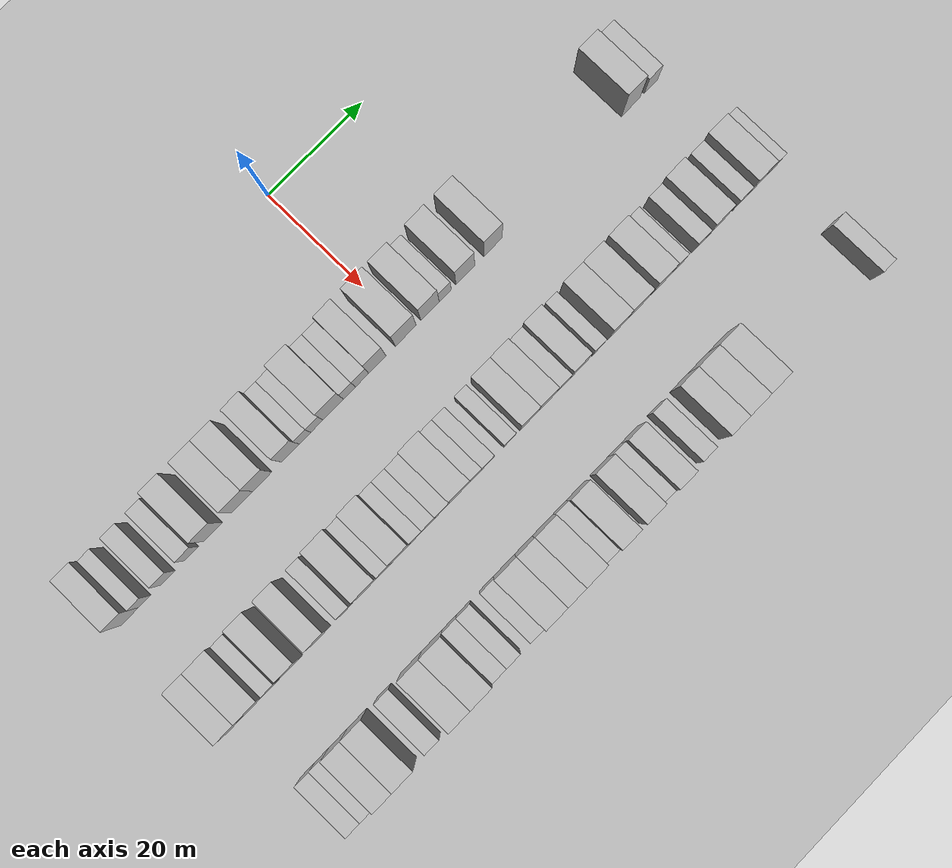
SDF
<sdf version="1.6">
 <world name="default">
  <include><name>ground_plane_1</name><uri>model://HANNAS_ground_plane</uri></include>
  <include>
   <name>ground_plane_2</name>
   <uri>model://HANNAS_ground_plane</uri>
   <pose>100 0 0  0 0 0</pose>
  </include>
  <model name="building_52">
   <static>1</static>
   <pose>25.0000 -58.2740 0 0.000000 0.000000 0.000000</pose>
   <link name="link">
    <pose>0 0 4.50 0 0 0</pose>
    <collision name="collision"><geometry><box><size>10.0000 3.6273 9.0000</size></box></geometry></collision>
    <visual name="visual">
     <cast_shadows>0</cast_shadows>
     <geometry><box><size>10.0000 3.6273 9.0000</size></box></geometry>
     <material>
      <script>
       <uri>model://HANNAS_wall/materials/scripts</uri>
       <uri>model://HANNAS_wall/materials/textures</uri>
       <name>vrc/HANNAS_wall</name>
      </script>
     </material>
    </visual>
   </link>
  </model>
  <model name="building_53">
   <static>1</static>
   <pose>25.0000 -55.2396 0 0.000000 0.000000 0.000000</pose>
   <link name="link">
    <pose>0 0 3.00 0 0 0</pose>
    <collision name="collision"><geometry><box><size>10.0000 2.4416 6.0000</size></box></geometry></collision>
    <visual name="visual">
     <cast_shadows>0</cast_shadows>
     <geometry><box><size>10.0000 2.4416 6.0000</size></box></geometry>
     <material>
      <script>
       <uri>model://HANNAS_wall/materials/scripts</uri>
       <uri>model://HANNAS_wall/materials/textures</uri>
       <name>vrc/HANNAS_wall</name>
      </script>
     </material>
    </visual>
   </link>
  </model>
  <model name="building_54">
   <static>1</static>
   <pose>25.0000 -50.5284 0 0.000000 0.000000 0.000000</pose>
   <link name="link">
    <pose>0 0 3.00 0 0 0</pose>
    <collision name="collision"><geometry><box><size>10.0000 2.9808 6.0000</size></box></geometry></collision>
    <visual name="visual">
     <cast_shadows>0</cast_shadows>
     <geometry><box><size>10.0000 2.9808 6.0000</size></box></geometry>
     <material>
      <script>
       <uri>model://HANNAS_wall/materials/scripts</uri>
       <uri>model://HANNAS_wall/materials/textures</uri>
       <name>vrc/HANNAS_wall</name>
      </script>
     </material>
    </visual>
   </link>
  </model>
  <model name="building_55">
   <static>1</static>
   <pose>25.0000 -45.5957 0 0.000000 0.000000 0.000000</pose>
   <link name="link">
    <pose>0 0 3.00 0 0 0</pose>
    <collision name="collision"><geometry><box><size>10.0000 2.8845 6.0000</size></box></geometry></collision>
    <visual name="visual">
     <cast_shadows>0</cast_shadows>
     <geometry><box><size>10.0000 2.8845 6.0000</size></box></geometry>
     <material>
      <script>
       <uri>model://HANNAS_wall/materials/scripts</uri>
       <uri>model://HANNAS_wall/materials/textures</uri>
       <name>vrc/HANNAS_wall</name>
      </script>
     </material>
    </visual>
   </link>
  </model>
  <model name="building_56">
   <static>1</static>
   <pose>25.0000 -41.2170 0 0.000000 0.000000 0.000000</pose>
   <link name="link">
    <pose>0 0 4.50 0 0 0</pose>
    <collision name="collision"><geometry><box><size>10.0000 3.8729 9.0000</size></box></geometry></collision>
    <visual name="visual">
     <cast_shadows>0</cast_shadows>
     <geometry><box><size>10.0000 3.8729 9.0000</size></box></geometry>
     <material>
      <script>
       <uri>model://HANNAS_wall/materials/scripts</uri>
       <uri>model://HANNAS_wall/materials/textures</uri>
       <name>vrc/HANNAS_wall</name>
      </script>
     </material>
    </visual>
   </link>
  </model>
  <model name="building_57">
   <static>1</static>
   <pose>25.0000 -35.1244 0 0.000000 0.000000 0.000000</pose>
   <link name="link">
    <pose>0 0 4.50 0 0 0</pose>
    <collision name="collision"><geometry><box><size>10.0000 4.3123 9.0000</size></box></geometry></collision>
    <visual name="visual">
     <cast_shadows>0</cast_shadows>
     <geometry><box><size>10.0000 4.3123 9.0000</size></box></geometry>
     <material>
      <script>
       <uri>model://HANNAS_wall/materials/scripts</uri>
       <uri>model://HANNAS_wall/materials/textures</uri>
       <name>vrc/HANNAS_wall</name>
      </script>
     </material>
    </visual>
   </link>
  </model>
  <model name="building_58">
   <static>1</static>
   <pose>25.0000 -30.9796 0 0.000000 0.000000 0.000000</pose>
   <link name="link">
    <pose>0 0 4.50 0 0 0</pose>
    <collision name="collision"><geometry><box><size>10.0000 3.9772 9.0000</size></box></geometry></collision>
    <visual name="visual">
     <cast_shadows>0</cast_shadows>
     <geometry><box><size>10.0000 3.9772 9.0000</size></box></geometry>
     <material>
      <script>
       <uri>model://HANNAS_wall/materials/scripts</uri>
       <uri>model://HANNAS_wall/materials/textures</uri>
       <name>vrc/HANNAS_wall</name>
      </script>
     </material>
    </visual>
   </link>
  </model>
  <model name="building_59">
   <static>1</static>
   <pose>25.0000 -25.1444 0 0.000000 0.000000 0.000000</pose>
   <link name="link">
    <pose>0 0 4.50 0 0 0</pose>
    <collision name="collision"><geometry><box><size>10.0000 3.6933 9.0000</size></box></geometry></collision>
    <visual name="visual">
     <cast_shadows>0</cast_shadows>
     <geometry><box><size>10.0000 3.6933 9.0000</size></box></geometry>
     <material>
      <script>
       <uri>model://HANNAS_wall/materials/scripts</uri>
       <uri>model://HANNAS_wall/materials/textures</uri>
       <name>vrc/HANNAS_wall</name>
      </script>
     </material>
    </visual>
   </link>
  </model>
  <model name="building_60">
   <static>1</static>
   <pose>25.0000 -22.0901 0 0.000000 0.000000 0.000000</pose>
   <link name="link">
    <pose>0 0 3.00 0 0 0</pose>
    <collision name="collision"><geometry><box><size>10.0000 2.4154 6.0000</size></box></geometry></collision>
    <visual name="visual">
     <cast_shadows>0</cast_shadows>
     <geometry><box><size>10.0000 2.4154 6.0000</size></box></geometry>
     <material>
      <script>
       <uri>model://HANNAS_wall/materials/scripts</uri>
       <uri>model://HANNAS_wall/materials/textures</uri>
       <name>vrc/HANNAS_wall</name>
      </script>
     </material>
    </visual>
   </link>
  </model>
  <model name="building_61">
   <static>1</static>
   <pose>25.0000 -19.5901 0 0.000000 0.000000 0.000000</pose>
   <link name="link">
    <pose>0 0 3.00 0 0 0</pose>
    <collision name="collision"><geometry><box><size>10.0000 2.5846 6.0000</size></box></geometry></collision>
    <visual name="visual">
     <cast_shadows>0</cast_shadows>
     <geometry><box><size>10.0000 2.5846 6.0000</size></box></geometry>
     <material>
      <script>
       <uri>model://HANNAS_wall/materials/scripts</uri>
       <uri>model://HANNAS_wall/materials/textures</uri>
       <name>vrc/HANNAS_wall</name>
      </script>
     </material>
    </visual>
   </link>
  </model>
  <model name="building_62">
   <static>1</static>
   <pose>25.0000 -16.1633 0 0.000000 0.000000 0.000000</pose>
   <link name="link">
    <pose>0 0 4.50 0 0 0</pose>
    <collision name="collision"><geometry><box><size>10.0000 4.2689 9.0000</size></box></geometry></collision>
    <visual name="visual">
     <cast_shadows>0</cast_shadows>
     <geometry><box><size>10.0000 4.2689 9.0000</size></box></geometry>
     <material>
      <script>
       <uri>model://HANNAS_wall/materials/scripts</uri>
       <uri>model://HANNAS_wall/materials/textures</uri>
       <name>vrc/HANNAS_wall</name>
      </script>
     </material>
    </visual>
   </link>
  </model>
  <model name="building_63">
   <static>1</static>
   <pose>25.0000 -12.7750 0 0.000000 0.000000 0.000000</pose>
   <link name="link">
    <pose>0 0 3.00 0 0 0</pose>
    <collision name="collision"><geometry><box><size>10.0000 2.5077 6.0000</size></box></geometry></collision>
    <visual name="visual">
     <cast_shadows>0</cast_shadows>
     <geometry><box><size>10.0000 2.5077 6.0000</size></box></geometry>
     <material>
      <script>
       <uri>model://HANNAS_wall/materials/scripts</uri>
       <uri>model://HANNAS_wall/materials/textures</uri>
       <name>vrc/HANNAS_wall</name>
      </script>
     </material>
    </visual>
   </link>
  </model>
  <model name="building_64">
   <static>1</static>
   <pose>25.0000 -10.1122 0 0.000000 0.000000 0.000000</pose>
   <link name="link">
    <pose>0 0 3.00 0 0 0</pose>
    <collision name="collision"><geometry><box><size>10.0000 2.8179 6.0000</size></box></geometry></collision>
    <visual name="visual">
     <cast_shadows>0</cast_shadows>
     <geometry><box><size>10.0000 2.8179 6.0000</size></box></geometry>
     <material>
      <script>
       <uri>model://HANNAS_wall/materials/scripts</uri>
       <uri>model://HANNAS_wall/materials/textures</uri>
       <name>vrc/HANNAS_wall</name>
      </script>
     </material>
    </visual>
   </link>
  </model>
  <model name="building_65">
   <static>1</static>
   <pose>25.0000 -6.8777 0 0.000000 0.000000 0.000000</pose>
   <link name="link">
    <pose>0 0 4.50 0 0 0</pose>
    <collision name="collision"><geometry><box><size>10.0000 3.6511 9.0000</size></box></geometry></collision>
    <visual name="visual">
     <cast_shadows>0</cast_shadows>
     <geometry><box><size>10.0000 3.6511 9.0000</size></box></geometry>
     <material>
      <script>
       <uri>model://HANNAS_wall/materials/scripts</uri>
       <uri>model://HANNAS_wall/materials/textures</uri>
       <name>vrc/HANNAS_wall</name>
      </script>
     </material>
    </visual>
   </link>
  </model>
  <model name="building_66">
   <static>1</static>
   <pose>25.0000 -0.8495 0 0.000000 0.000000 0.000000</pose>
   <link name="link">
    <pose>0 0 4.50 0 0 0</pose>
    <collision name="collision"><geometry><box><size>10.0000 4.4052 9.0000</size></box></geometry></collision>
    <visual name="visual">
     <cast_shadows>0</cast_shadows>
     <geometry><box><size>10.0000 4.4052 9.0000</size></box></geometry>
     <material>
      <script>
       <uri>model://HANNAS_wall/materials/scripts</uri>
       <uri>model://HANNAS_wall/materials/textures</uri>
       <name>vrc/HANNAS_wall</name>
      </script>
     </material>
    </visual>
   </link>
  </model>
  <model name="building_67">
   <static>1</static>
   <pose>25.0000 4.3124 0 0.000000 0.000000 0.000000</pose>
   <link name="link">
    <pose>0 0 4.50 0 0 0</pose>
    <collision name="collision"><geometry><box><size>10.0000 3.9185 9.0000</size></box></geometry></collision>
    <visual name="visual">
     <cast_shadows>0</cast_shadows>
     <geometry><box><size>10.0000 3.9185 9.0000</size></box></geometry>
     <material>
      <script>
       <uri>model://HANNAS_wall/materials/scripts</uri>
       <uri>model://HANNAS_wall/materials/textures</uri>
       <name>vrc/HANNAS_wall</name>
      </script>
     </material>
    </visual>
   </link>
  </model>
  <model name="building_68">
   <static>1</static>
   <pose>25.0000 7.5532 0 0.000000 0.000000 0.000000</pose>
   <link name="link">
    <pose>0 0 3.00 0 0 0</pose>
    <collision name="collision"><geometry><box><size>10.0000 2.5631 6.0000</size></box></geometry></collision>
    <visual name="visual">
     <cast_shadows>0</cast_shadows>
     <geometry><box><size>10.0000 2.5631 6.0000</size></box></geometry>
     <material>
      <script>
       <uri>model://HANNAS_wall/materials/scripts</uri>
       <uri>model://HANNAS_wall/materials/textures</uri>
       <name>vrc/HANNAS_wall</name>
      </script>
     </material>
    </visual>
   </link>
  </model>
  <model name="building_69">
   <static>1</static>
   <pose>25.0000 11.8336 0 0.000000 0.000000 0.000000</pose>
   <link name="link">
    <pose>0 0 4.50 0 0 0</pose>
    <collision name="collision"><geometry><box><size>10.0000 3.9978 9.0000</size></box></geometry></collision>
    <visual name="visual">
     <cast_shadows>0</cast_shadows>
     <geometry><box><size>10.0000 3.9978 9.0000</size></box></geometry>
     <material>
      <script>
       <uri>model://HANNAS_wall/materials/scripts</uri>
       <uri>model://HANNAS_wall/materials/textures</uri>
       <name>vrc/HANNAS_wall</name>
      </script>
     </material>
    </visual>
   </link>
  </model>
  <model name="building_70">
   <static>1</static>
   <pose>25.0000 17.7720 0 0.000000 0.000000 0.000000</pose>
   <link name="link">
    <pose>0 0 4.50 0 0 0</pose>
    <collision name="collision"><geometry><box><size>10.0000 3.8788 9.0000</size></box></geometry></collision>
    <visual name="visual">
     <cast_shadows>0</cast_shadows>
     <geometry><box><size>10.0000 3.8788 9.0000</size></box></geometry>
     <material>
      <script>
       <uri>model://HANNAS_wall/materials/scripts</uri>
       <uri>model://HANNAS_wall/materials/textures</uri>
       <name>vrc/HANNAS_wall</name>
      </script>
     </material>
    </visual>
   </link>
  </model>
  <model name="building_71">
   <static>1</static>
   <pose>25.0000 47.7534 0 0.000000 0.000000 0.000000</pose>
   <link name="link">
    <pose>0 0 4.50 0 0 0</pose>
    <collision name="collision"><geometry><box><size>10.0000 4.0280 9.0000</size></box></geometry></collision>
    <visual name="visual">
     <cast_shadows>0</cast_shadows>
     <geometry><box><size>10.0000 4.0280 9.0000</size></box></geometry>
     <material>
      <script>
       <uri>model://HANNAS_wall/materials/scripts</uri>
       <uri>model://HANNAS_wall/materials/textures</uri>
       <name>vrc/HANNAS_wall</name>
      </script>
     </material>
    </visual>
   </link>
  </model>
  <model name="building_72">
   <static>1</static>
   <pose>25.0000 52.2145 0 0.000000 0.000000 0.000000</pose>
   <link name="link">
    <pose>0 0 3.00 0 0 0</pose>
    <collision name="collision"><geometry><box><size>10.0000 2.8943 6.0000</size></box></geometry></collision>
    <visual name="visual">
     <cast_shadows>0</cast_shadows>
     <geometry><box><size>10.0000 2.8943 6.0000</size></box></geometry>
     <material>
      <script>
       <uri>model://HANNAS_wall/materials/scripts</uri>
       <uri>model://HANNAS_wall/materials/textures</uri>
       <name>vrc/HANNAS_wall</name>
      </script>
     </material>
    </visual>
   </link>
  </model>
  <model name="building_169">
   <static>1</static>
   <pose>47.0000 -58.1785 0 0.000000 0.000000 0.000000</pose>
   <link name="link">
    <pose>0 0 4.50 0 0 0</pose>
    <collision name="collision"><geometry><box><size>10.0000 3.8256 9.0000</size></box></geometry></collision>
    <visual name="visual">
     <cast_shadows>0</cast_shadows>
     <geometry><box><size>10.0000 3.8256 9.0000</size></box></geometry>
     <material>
      <script>
       <uri>model://HANNAS_wall/materials/scripts</uri>
       <uri>model://HANNAS_wall/materials/textures</uri>
       <name>vrc/HANNAS_wall</name>
      </script>
     </material>
    </visual>
   </link>
  </model>
  <model name="building_170">
   <static>1</static>
   <pose>47.0000 -54.0431 0 0.000000 0.000000 0.000000</pose>
   <link name="link">
    <pose>0 0 4.50 0 0 0</pose>
    <collision name="collision"><geometry><box><size>10.0000 4.4451 9.0000</size></box></geometry></collision>
    <visual name="visual">
     <cast_shadows>0</cast_shadows>
     <geometry><box><size>10.0000 4.4451 9.0000</size></box></geometry>
     <material>
      <script>
       <uri>model://HANNAS_wall/materials/scripts</uri>
       <uri>model://HANNAS_wall/materials/textures</uri>
       <name>vrc/HANNAS_wall</name>
      </script>
     </material>
    </visual>
   </link>
  </model>
  <model name="building_171">
   <static>1</static>
   <pose>47.0000 -50.5903 0 0.000000 0.000000 0.000000</pose>
   <link name="link">
    <pose>0 0 3.00 0 0 0</pose>
    <collision name="collision"><geometry><box><size>10.0000 2.4605 6.0000</size></box></geometry></collision>
    <visual name="visual">
     <cast_shadows>0</cast_shadows>
     <geometry><box><size>10.0000 2.4605 6.0000</size></box></geometry>
     <material>
      <script>
       <uri>model://HANNAS_wall/materials/scripts</uri>
       <uri>model://HANNAS_wall/materials/textures</uri>
       <name>vrc/HANNAS_wall</name>
      </script>
     </material>
    </visual>
   </link>
  </model>
  <model name="building_172">
   <static>1</static>
   <pose>47.0000 -46.5137 0 0.000000 0.000000 0.000000</pose>
   <link name="link">
    <pose>0 0 4.50 0 0 0</pose>
    <collision name="collision"><geometry><box><size>10.0000 3.6927 9.0000</size></box></geometry></collision>
    <visual name="visual">
     <cast_shadows>0</cast_shadows>
     <geometry><box><size>10.0000 3.6927 9.0000</size></box></geometry>
     <material>
      <script>
       <uri>model://HANNAS_wall/materials/scripts</uri>
       <uri>model://HANNAS_wall/materials/textures</uri>
       <name>vrc/HANNAS_wall</name>
      </script>
     </material>
    </visual>
   </link>
  </model>
  <model name="building_173">
   <static>1</static>
   <pose>47.0000 -40.7774 0 0.000000 0.000000 0.000000</pose>
   <link name="link">
    <pose>0 0 4.50 0 0 0</pose>
    <collision name="collision"><geometry><box><size>10.0000 3.7800 9.0000</size></box></geometry></collision>
    <visual name="visual">
     <cast_shadows>0</cast_shadows>
     <geometry><box><size>10.0000 3.7800 9.0000</size></box></geometry>
     <material>
      <script>
       <uri>model://HANNAS_wall/materials/scripts</uri>
       <uri>model://HANNAS_wall/materials/textures</uri>
       <name>vrc/HANNAS_wall</name>
      </script>
     </material>
    </visual>
   </link>
  </model>
  <model name="building_174">
   <static>1</static>
   <pose>47.0000 -35.6167 0 0.000000 0.000000 0.000000</pose>
   <link name="link">
    <pose>0 0 3.00 0 0 0</pose>
    <collision name="collision"><geometry><box><size>10.0000 2.5415 6.0000</size></box></geometry></collision>
    <visual name="visual">
     <cast_shadows>0</cast_shadows>
     <geometry><box><size>10.0000 2.5415 6.0000</size></box></geometry>
     <material>
      <script>
       <uri>model://HANNAS_wall/materials/scripts</uri>
       <uri>model://HANNAS_wall/materials/textures</uri>
       <name>vrc/HANNAS_wall</name>
      </script>
     </material>
    </visual>
   </link>
  </model>
  <model name="building_175">
   <static>1</static>
   <pose>47.0000 -31.0996 0 0.000000 0.000000 0.000000</pose>
   <link name="link">
    <pose>0 0 4.50 0 0 0</pose>
    <collision name="collision"><geometry><box><size>10.0000 4.4926 9.0000</size></box></geometry></collision>
    <visual name="visual">
     <cast_shadows>0</cast_shadows>
     <geometry><box><size>10.0000 4.4926 9.0000</size></box></geometry>
     <material>
      <script>
       <uri>model://HANNAS_wall/materials/scripts</uri>
       <uri>model://HANNAS_wall/materials/textures</uri>
       <name>vrc/HANNAS_wall</name>
      </script>
     </material>
    </visual>
   </link>
  </model>
  <model name="building_176">
   <static>1</static>
   <pose>47.0000 -27.5142 0 0.000000 0.000000 0.000000</pose>
   <link name="link">
    <pose>0 0 3.00 0 0 0</pose>
    <collision name="collision"><geometry><box><size>10.0000 2.6783 6.0000</size></box></geometry></collision>
    <visual name="visual">
     <cast_shadows>0</cast_shadows>
     <geometry><box><size>10.0000 2.6783 6.0000</size></box></geometry>
     <material>
      <script>
       <uri>model://HANNAS_wall/materials/scripts</uri>
       <uri>model://HANNAS_wall/materials/textures</uri>
       <name>vrc/HANNAS_wall</name>
      </script>
     </material>
    </visual>
   </link>
  </model>
  <model name="building_177">
   <static>1</static>
   <pose>47.0000 -24.1858 0 0.000000 0.000000 0.000000</pose>
   <link name="link">
    <pose>0 0 4.50 0 0 0</pose>
    <collision name="collision"><geometry><box><size>10.0000 3.9785 9.0000</size></box></geometry></collision>
    <visual name="visual">
     <cast_shadows>0</cast_shadows>
     <geometry><box><size>10.0000 3.9785 9.0000</size></box></geometry>
     <material>
      <script>
       <uri>model://HANNAS_wall/materials/scripts</uri>
       <uri>model://HANNAS_wall/materials/textures</uri>
       <name>vrc/HANNAS_wall</name>
      </script>
     </material>
    </visual>
   </link>
  </model>
  <model name="building_178">
   <static>1</static>
   <pose>47.0000 -20.9235 0 0.000000 0.000000 0.000000</pose>
   <link name="link">
    <pose>0 0 3.00 0 0 0</pose>
    <collision name="collision"><geometry><box><size>10.0000 2.5461 6.0000</size></box></geometry></collision>
    <visual name="visual">
     <cast_shadows>0</cast_shadows>
     <geometry><box><size>10.0000 2.5461 6.0000</size></box></geometry>
     <material>
      <script>
       <uri>model://HANNAS_wall/materials/scripts</uri>
       <uri>model://HANNAS_wall/materials/textures</uri>
       <name>vrc/HANNAS_wall</name>
      </script>
     </material>
    </visual>
   </link>
  </model>
  <model name="building_179">
   <static>1</static>
   <pose>47.0000 -18.3154 0 0.000000 0.000000 0.000000</pose>
   <link name="link">
    <pose>0 0 3.00 0 0 0</pose>
    <collision name="collision"><geometry><box><size>10.0000 2.6702 6.0000</size></box></geometry></collision>
    <visual name="visual">
     <cast_shadows>0</cast_shadows>
     <geometry><box><size>10.0000 2.6702 6.0000</size></box></geometry>
     <material>
      <script>
       <uri>model://HANNAS_wall/materials/scripts</uri>
       <uri>model://HANNAS_wall/materials/textures</uri>
       <name>vrc/HANNAS_wall</name>
      </script>
     </material>
    </visual>
   </link>
  </model>
  <model name="building_180">
   <static>1</static>
   <pose>47.0000 -15.4980 0 0.000000 0.000000 0.000000</pose>
   <link name="link">
    <pose>0 0 3.00 0 0 0</pose>
    <collision name="collision"><geometry><box><size>10.0000 2.9646 6.0000</size></box></geometry></collision>
    <visual name="visual">
     <cast_shadows>0</cast_shadows>
     <geometry><box><size>10.0000 2.9646 6.0000</size></box></geometry>
     <material>
      <script>
       <uri>model://HANNAS_wall/materials/scripts</uri>
       <uri>model://HANNAS_wall/materials/textures</uri>
       <name>vrc/HANNAS_wall</name>
      </script>
     </material>
    </visual>
   </link>
  </model>
  <model name="building_181">
   <static>1</static>
   <pose>47.0000 -11.8893 0 0.000000 0.000000 0.000000</pose>
   <link name="link">
    <pose>0 0 4.50 0 0 0</pose>
    <collision name="collision"><geometry><box><size>10.0000 4.2527 9.0000</size></box></geometry></collision>
    <visual name="visual">
     <cast_shadows>0</cast_shadows>
     <geometry><box><size>10.0000 4.2527 9.0000</size></box></geometry>
     <material>
      <script>
       <uri>model://HANNAS_wall/materials/scripts</uri>
       <uri>model://HANNAS_wall/materials/textures</uri>
       <name>vrc/HANNAS_wall</name>
      </script>
     </material>
    </visual>
   </link>
  </model>
  <model name="building_182">
   <static>1</static>
   <pose>47.0000 -8.5340 0 0.000000 0.000000 0.000000</pose>
   <link name="link">
    <pose>0 0 3.00 0 0 0</pose>
    <collision name="collision"><geometry><box><size>10.0000 2.4579 6.0000</size></box></geometry></collision>
    <visual name="visual">
     <cast_shadows>0</cast_shadows>
     <geometry><box><size>10.0000 2.4579 6.0000</size></box></geometry>
     <material>
      <script>
       <uri>model://HANNAS_wall/materials/scripts</uri>
       <uri>model://HANNAS_wall/materials/textures</uri>
       <name>vrc/HANNAS_wall</name>
      </script>
     </material>
    </visual>
   </link>
  </model>
  <model name="building_183">
   <static>1</static>
   <pose>47.0000 -6.0006 0 0.000000 0.000000 0.000000</pose>
   <link name="link">
    <pose>0 0 3.00 0 0 0</pose>
    <collision name="collision"><geometry><box><size>10.0000 2.6089 6.0000</size></box></geometry></collision>
    <visual name="visual">
     <cast_shadows>0</cast_shadows>
     <geometry><box><size>10.0000 2.6089 6.0000</size></box></geometry>
     <material>
      <script>
       <uri>model://HANNAS_wall/materials/scripts</uri>
       <uri>model://HANNAS_wall/materials/textures</uri>
       <name>vrc/HANNAS_wall</name>
      </script>
     </material>
    </visual>
   </link>
  </model>
  <model name="building_184">
   <static>1</static>
   <pose>47.0000 -1.4585 0 0.000000 0.000000 0.000000</pose>
   <link name="link">
    <pose>0 0 3.00 0 0 0</pose>
    <collision name="collision"><geometry><box><size>10.0000 2.4753 6.0000</size></box></geometry></collision>
    <visual name="visual">
     <cast_shadows>0</cast_shadows>
     <geometry><box><size>10.0000 2.4753 6.0000</size></box></geometry>
     <material>
      <script>
       <uri>model://HANNAS_wall/materials/scripts</uri>
       <uri>model://HANNAS_wall/materials/textures</uri>
       <name>vrc/HANNAS_wall</name>
      </script>
     </material>
    </visual>
   </link>
  </model>
  <model name="building_185">
   <static>1</static>
   <pose>47.0000 2.7223 0 0.000000 0.000000 0.000000</pose>
   <link name="link">
    <pose>0 0 4.50 0 0 0</pose>
    <collision name="collision"><geometry><box><size>10.0000 3.8863 9.0000</size></box></geometry></collision>
    <visual name="visual">
     <cast_shadows>0</cast_shadows>
     <geometry><box><size>10.0000 3.8863 9.0000</size></box></geometry>
     <material>
      <script>
       <uri>model://HANNAS_wall/materials/scripts</uri>
       <uri>model://HANNAS_wall/materials/textures</uri>
       <name>vrc/HANNAS_wall</name>
      </script>
     </material>
    </visual>
   </link>
  </model>
  <model name="building_186">
   <static>1</static>
   <pose>47.0000 6.5439 0 0.000000 0.000000 0.000000</pose>
   <link name="link">
    <pose>0 0 4.50 0 0 0</pose>
    <collision name="collision"><geometry><box><size>10.0000 3.7568 9.0000</size></box></geometry></collision>
    <visual name="visual">
     <cast_shadows>0</cast_shadows>
     <geometry><box><size>10.0000 3.7568 9.0000</size></box></geometry>
     <material>
      <script>
       <uri>model://HANNAS_wall/materials/scripts</uri>
       <uri>model://HANNAS_wall/materials/textures</uri>
       <name>vrc/HANNAS_wall</name>
      </script>
     </material>
    </visual>
   </link>
  </model>
  <model name="building_187">
   <static>1</static>
   <pose>47.0000 9.9196 0 0.000000 0.000000 0.000000</pose>
   <link name="link">
    <pose>0 0 3.00 0 0 0</pose>
    <collision name="collision"><geometry><box><size>10.0000 2.9945 6.0000</size></box></geometry></collision>
    <visual name="visual">
     <cast_shadows>0</cast_shadows>
     <geometry><box><size>10.0000 2.9945 6.0000</size></box></geometry>
     <material>
      <script>
       <uri>model://HANNAS_wall/materials/scripts</uri>
       <uri>model://HANNAS_wall/materials/textures</uri>
       <name>vrc/HANNAS_wall</name>
      </script>
     </material>
    </visual>
   </link>
  </model>
  <model name="building_188">
   <static>1</static>
   <pose>47.0000 13.2847 0 0.000000 0.000000 0.000000</pose>
   <link name="link">
    <pose>0 0 4.50 0 0 0</pose>
    <collision name="collision"><geometry><box><size>10.0000 3.7358 9.0000</size></box></geometry></collision>
    <visual name="visual">
     <cast_shadows>0</cast_shadows>
     <geometry><box><size>10.0000 3.7358 9.0000</size></box></geometry>
     <material>
      <script>
       <uri>model://HANNAS_wall/materials/scripts</uri>
       <uri>model://HANNAS_wall/materials/textures</uri>
       <name>vrc/HANNAS_wall</name>
      </script>
     </material>
    </visual>
   </link>
  </model>
  <model name="building_189">
   <static>1</static>
   <pose>47.0000 17.3643 0 0.000000 0.000000 0.000000</pose>
   <link name="link">
    <pose>0 0 3.00 0 0 0</pose>
    <collision name="collision"><geometry><box><size>10.0000 2.4234 6.0000</size></box></geometry></collision>
    <visual name="visual">
     <cast_shadows>0</cast_shadows>
     <geometry><box><size>10.0000 2.4234 6.0000</size></box></geometry>
     <material>
      <script>
       <uri>model://HANNAS_wall/materials/scripts</uri>
       <uri>model://HANNAS_wall/materials/textures</uri>
       <name>vrc/HANNAS_wall</name>
      </script>
     </material>
    </visual>
   </link>
  </model>
  <model name="building_190">
   <static>1</static>
   <pose>47.0000 21.6171 0 0.000000 0.000000 0.000000</pose>
   <link name="link">
    <pose>0 0 4.50 0 0 0</pose>
    <collision name="collision"><geometry><box><size>10.0000 4.0823 9.0000</size></box></geometry></collision>
    <visual name="visual">
     <cast_shadows>0</cast_shadows>
     <geometry><box><size>10.0000 4.0823 9.0000</size></box></geometry>
     <material>
      <script>
       <uri>model://HANNAS_wall/materials/scripts</uri>
       <uri>model://HANNAS_wall/materials/textures</uri>
       <name>vrc/HANNAS_wall</name>
      </script>
     </material>
    </visual>
   </link>
  </model>
  <model name="building_191">
   <static>1</static>
   <pose>47.0000 25.7757 0 0.000000 0.000000 0.000000</pose>
   <link name="link">
    <pose>0 0 4.50 0 0 0</pose>
    <collision name="collision"><geometry><box><size>10.0000 4.2348 9.0000</size></box></geometry></collision>
    <visual name="visual">
     <cast_shadows>0</cast_shadows>
     <geometry><box><size>10.0000 4.2348 9.0000</size></box></geometry>
     <material>
      <script>
       <uri>model://HANNAS_wall/materials/scripts</uri>
       <uri>model://HANNAS_wall/materials/textures</uri>
       <name>vrc/HANNAS_wall</name>
      </script>
     </material>
    </visual>
   </link>
  </model>
  <model name="building_192">
   <static>1</static>
   <pose>47.0000 30.9568 0 0.000000 0.000000 0.000000</pose>
   <link name="link">
    <pose>0 0 4.50 0 0 0</pose>
    <collision name="collision"><geometry><box><size>10.0000 4.1275 9.0000</size></box></geometry></collision>
    <visual name="visual">
     <cast_shadows>0</cast_shadows>
     <geometry><box><size>10.0000 4.1275 9.0000</size></box></geometry>
     <material>
      <script>
       <uri>model://HANNAS_wall/materials/scripts</uri>
       <uri>model://HANNAS_wall/materials/textures</uri>
       <name>vrc/HANNAS_wall</name>
      </script>
     </material>
    </visual>
   </link>
  </model>
  <model name="building_193">
   <static>1</static>
   <pose>47.0000 34.4570 0 0.000000 0.000000 0.000000</pose>
   <link name="link">
    <pose>0 0 3.00 0 0 0</pose>
    <collision name="collision"><geometry><box><size>10.0000 2.8727 6.0000</size></box></geometry></collision>
    <visual name="visual">
     <cast_shadows>0</cast_shadows>
     <geometry><box><size>10.0000 2.8727 6.0000</size></box></geometry>
     <material>
      <script>
       <uri>model://HANNAS_wall/materials/scripts</uri>
       <uri>model://HANNAS_wall/materials/textures</uri>
       <name>vrc/HANNAS_wall</name>
      </script>
     </material>
    </visual>
   </link>
  </model>
  <model name="building_194">
   <static>1</static>
   <pose>47.0000 39.3200 0 0.000000 0.000000 0.000000</pose>
   <link name="link">
    <pose>0 0 3.00 0 0 0</pose>
    <collision name="collision"><geometry><box><size>10.0000 2.8533 6.0000</size></box></geometry></collision>
    <visual name="visual">
     <cast_shadows>0</cast_shadows>
     <geometry><box><size>10.0000 2.8533 6.0000</size></box></geometry>
     <material>
      <script>
       <uri>model://HANNAS_wall/materials/scripts</uri>
       <uri>model://HANNAS_wall/materials/textures</uri>
       <name>vrc/HANNAS_wall</name>
      </script>
     </material>
    </visual>
   </link>
  </model>
  <model name="building_195">
   <static>1</static>
   <pose>47.0000 42.7530 0 0.000000 0.000000 0.000000</pose>
   <link name="link">
    <pose>0 0 4.50 0 0 0</pose>
    <collision name="collision"><geometry><box><size>10.0000 4.0126 9.0000</size></box></geometry></collision>
    <visual name="visual">
     <cast_shadows>0</cast_shadows>
     <geometry><box><size>10.0000 4.0126 9.0000</size></box></geometry>
     <material>
      <script>
       <uri>model://HANNAS_wall/materials/scripts</uri>
       <uri>model://HANNAS_wall/materials/textures</uri>
       <name>vrc/HANNAS_wall</name>
      </script>
     </material>
    </visual>
   </link>
  </model>
  <model name="building_196">
   <static>1</static>
   <pose>47.0000 48.1871 0 0.000000 0.000000 0.000000</pose>
   <link name="link">
    <pose>0 0 3.00 0 0 0</pose>
    <collision name="collision"><geometry><box><size>10.0000 2.8556 6.0000</size></box></geometry></collision>
    <visual name="visual">
     <cast_shadows>0</cast_shadows>
     <geometry><box><size>10.0000 2.8556 6.0000</size></box></geometry>
     <material>
      <script>
       <uri>model://HANNAS_wall/materials/scripts</uri>
       <uri>model://HANNAS_wall/materials/textures</uri>
       <name>vrc/HANNAS_wall</name>
      </script>
     </material>
    </visual>
   </link>
  </model>
  <model name="building_197">
   <static>1</static>
   <pose>47.0000 51.6441 0 0.000000 0.000000 0.000000</pose>
   <link name="link">
    <pose>0 0 4.50 0 0 0</pose>
    <collision name="collision"><geometry><box><size>10.0000 4.0585 9.0000</size></box></geometry></collision>
    <visual name="visual">
     <cast_shadows>0</cast_shadows>
     <geometry><box><size>10.0000 4.0585 9.0000</size></box></geometry>
     <material>
      <script>
       <uri>model://HANNAS_wall/materials/scripts</uri>
       <uri>model://HANNAS_wall/materials/textures</uri>
       <name>vrc/HANNAS_wall</name>
      </script>
     </material>
    </visual>
   </link>
  </model>
  <model name="building_198">
   <static>1</static>
   <pose>47.0000 55.1408 0 0.000000 0.000000 0.000000</pose>
   <link name="link">
    <pose>0 0 3.00 0 0 0</pose>
    <collision name="collision"><geometry><box><size>10.0000 2.9348 6.0000</size></box></geometry></collision>
    <visual name="visual">
     <cast_shadows>0</cast_shadows>
     <geometry><box><size>10.0000 2.9348 6.0000</size></box></geometry>
     <material>
      <script>
       <uri>model://HANNAS_wall/materials/scripts</uri>
       <uri>model://HANNAS_wall/materials/textures</uri>
       <name>vrc/HANNAS_wall</name>
      </script>
     </material>
    </visual>
   </link>
  </model>
  <model name="building_297">
   <static>1</static>
   <pose>69.0000 -55.7956 0 0.000000 0.000000 0.000000</pose>
   <link name="link">
    <pose>0 0 3.00 0 0 0</pose>
    <collision name="collision"><geometry><box><size>10.0000 2.8144 6.0000</size></box></geometry></collision>
    <visual name="visual">
     <cast_shadows>0</cast_shadows>
     <geometry><box><size>10.0000 2.8144 6.0000</size></box></geometry>
     <material>
      <script>
       <uri>model://HANNAS_wall/materials/scripts</uri>
       <uri>model://HANNAS_wall/materials/textures</uri>
       <name>vrc/HANNAS_wall</name>
      </script>
     </material>
    </visual>
   </link>
  </model>
  <model name="building_298">
   <static>1</static>
   <pose>69.0000 -52.9351 0 0.000000 0.000000 0.000000</pose>
   <link name="link">
    <pose>0 0 3.00 0 0 0</pose>
    <collision name="collision"><geometry><box><size>10.0000 2.9068 6.0000</size></box></geometry></collision>
    <visual name="visual">
     <cast_shadows>0</cast_shadows>
     <geometry><box><size>10.0000 2.9068 6.0000</size></box></geometry>
     <material>
      <script>
       <uri>model://HANNAS_wall/materials/scripts</uri>
       <uri>model://HANNAS_wall/materials/textures</uri>
       <name>vrc/HANNAS_wall</name>
      </script>
     </material>
    </visual>
   </link>
  </model>
  <model name="building_299">
   <static>1</static>
   <pose>69.0000 -49.5875 0 0.000000 0.000000 0.000000</pose>
   <link name="link">
    <pose>0 0 4.50 0 0 0</pose>
    <collision name="collision"><geometry><box><size>10.0000 3.7884 9.0000</size></box></geometry></collision>
    <visual name="visual">
     <cast_shadows>0</cast_shadows>
     <geometry><box><size>10.0000 3.7884 9.0000</size></box></geometry>
     <material>
      <script>
       <uri>model://HANNAS_wall/materials/scripts</uri>
       <uri>model://HANNAS_wall/materials/textures</uri>
       <name>vrc/HANNAS_wall</name>
      </script>
     </material>
    </visual>
   </link>
  </model>
  <model name="building_300">
   <static>1</static>
   <pose>69.0000 -45.6287 0 0.000000 0.000000 0.000000</pose>
   <link name="link">
    <pose>0 0 4.50 0 0 0</pose>
    <collision name="collision"><geometry><box><size>10.0000 4.1292 9.0000</size></box></geometry></collision>
    <visual name="visual">
     <cast_shadows>0</cast_shadows>
     <geometry><box><size>10.0000 4.1292 9.0000</size></box></geometry>
     <material>
      <script>
       <uri>model://HANNAS_wall/materials/scripts</uri>
       <uri>model://HANNAS_wall/materials/textures</uri>
       <name>vrc/HANNAS_wall</name>
      </script>
     </material>
    </visual>
   </link>
  </model>
  <model name="building_301">
   <static>1</static>
   <pose>69.0000 -40.0858 0 0.000000 0.000000 0.000000</pose>
   <link name="link">
    <pose>0 0 3.00 0 0 0</pose>
    <collision name="collision"><geometry><box><size>10.0000 2.9566 6.0000</size></box></geometry></collision>
    <visual name="visual">
     <cast_shadows>0</cast_shadows>
     <geometry><box><size>10.0000 2.9566 6.0000</size></box></geometry>
     <material>
      <script>
       <uri>model://HANNAS_wall/materials/scripts</uri>
       <uri>model://HANNAS_wall/materials/textures</uri>
       <name>vrc/HANNAS_wall</name>
      </script>
     </material>
    </visual>
   </link>
  </model>
  <model name="building_302">
   <static>1</static>
   <pose>69.0000 -34.4725 0 0.000000 0.000000 0.000000</pose>
   <link name="link">
    <pose>0 0 4.50 0 0 0</pose>
    <collision name="collision"><geometry><box><size>10.0000 4.2701 9.0000</size></box></geometry></collision>
    <visual name="visual">
     <cast_shadows>0</cast_shadows>
     <geometry><box><size>10.0000 4.2701 9.0000</size></box></geometry>
     <material>
      <script>
       <uri>model://HANNAS_wall/materials/scripts</uri>
       <uri>model://HANNAS_wall/materials/textures</uri>
       <name>vrc/HANNAS_wall</name>
      </script>
     </material>
    </visual>
   </link>
  </model>
  <model name="building_303">
   <static>1</static>
   <pose>69.0000 -30.1529 0 0.000000 0.000000 0.000000</pose>
   <link name="link">
    <pose>0 0 4.50 0 0 0</pose>
    <collision name="collision"><geometry><box><size>10.0000 4.3692 9.0000</size></box></geometry></collision>
    <visual name="visual">
     <cast_shadows>0</cast_shadows>
     <geometry><box><size>10.0000 4.3692 9.0000</size></box></geometry>
     <material>
      <script>
       <uri>model://HANNAS_wall/materials/scripts</uri>
       <uri>model://HANNAS_wall/materials/textures</uri>
       <name>vrc/HANNAS_wall</name>
      </script>
     </material>
    </visual>
   </link>
  </model>
  <model name="building_304">
   <static>1</static>
   <pose>69.0000 -26.5095 0 0.000000 0.000000 0.000000</pose>
   <link name="link">
    <pose>0 0 3.00 0 0 0</pose>
    <collision name="collision"><geometry><box><size>10.0000 2.9176 6.0000</size></box></geometry></collision>
    <visual name="visual">
     <cast_shadows>0</cast_shadows>
     <geometry><box><size>10.0000 2.9176 6.0000</size></box></geometry>
     <material>
      <script>
       <uri>model://HANNAS_wall/materials/scripts</uri>
       <uri>model://HANNAS_wall/materials/textures</uri>
       <name>vrc/HANNAS_wall</name>
      </script>
     </material>
    </visual>
   </link>
  </model>
  <model name="building_305">
   <static>1</static>
   <pose>69.0000 -23.6128 0 0.000000 0.000000 0.000000</pose>
   <link name="link">
    <pose>0 0 3.00 0 0 0</pose>
    <collision name="collision"><geometry><box><size>10.0000 2.8757 6.0000</size></box></geometry></collision>
    <visual name="visual">
     <cast_shadows>0</cast_shadows>
     <geometry><box><size>10.0000 2.8757 6.0000</size></box></geometry>
     <material>
      <script>
       <uri>model://HANNAS_wall/materials/scripts</uri>
       <uri>model://HANNAS_wall/materials/textures</uri>
       <name>vrc/HANNAS_wall</name>
      </script>
     </material>
    </visual>
   </link>
  </model>
  <model name="building_306">
   <static>1</static>
   <pose>69.0000 -18.7434 0 0.000000 0.000000 0.000000</pose>
   <link name="link">
    <pose>0 0 3.00 0 0 0</pose>
    <collision name="collision"><geometry><box><size>10.0000 2.8631 6.0000</size></box></geometry></collision>
    <visual name="visual">
     <cast_shadows>0</cast_shadows>
     <geometry><box><size>10.0000 2.8631 6.0000</size></box></geometry>
     <material>
      <script>
       <uri>model://HANNAS_wall/materials/scripts</uri>
       <uri>model://HANNAS_wall/materials/textures</uri>
       <name>vrc/HANNAS_wall</name>
      </script>
     </material>
    </visual>
   </link>
  </model>
  <model name="building_307">
   <static>1</static>
   <pose>69.0000 -15.0775 0 0.000000 0.000000 0.000000</pose>
   <link name="link">
    <pose>0 0 4.50 0 0 0</pose>
    <collision name="collision"><geometry><box><size>10.0000 4.4687 9.0000</size></box></geometry></collision>
    <visual name="visual">
     <cast_shadows>0</cast_shadows>
     <geometry><box><size>10.0000 4.4687 9.0000</size></box></geometry>
     <material>
      <script>
       <uri>model://HANNAS_wall/materials/scripts</uri>
       <uri>model://HANNAS_wall/materials/textures</uri>
       <name>vrc/HANNAS_wall</name>
      </script>
     </material>
    </visual>
   </link>
  </model>
  <model name="building_308">
   <static>1</static>
   <pose>69.0000 -10.9860 0 0.000000 0.000000 0.000000</pose>
   <link name="link">
    <pose>0 0 4.50 0 0 0</pose>
    <collision name="collision"><geometry><box><size>10.0000 3.7143 9.0000</size></box></geometry></collision>
    <visual name="visual">
     <cast_shadows>0</cast_shadows>
     <geometry><box><size>10.0000 3.7143 9.0000</size></box></geometry>
     <material>
      <script>
       <uri>model://HANNAS_wall/materials/scripts</uri>
       <uri>model://HANNAS_wall/materials/textures</uri>
       <name>vrc/HANNAS_wall</name>
      </script>
     </material>
    </visual>
   </link>
  </model>
  <model name="building_309">
   <static>1</static>
   <pose>69.0000 -6.9158 0 0.000000 0.000000 0.000000</pose>
   <link name="link">
    <pose>0 0 4.50 0 0 0</pose>
    <collision name="collision"><geometry><box><size>10.0000 4.4261 9.0000</size></box></geometry></collision>
    <visual name="visual">
     <cast_shadows>0</cast_shadows>
     <geometry><box><size>10.0000 4.4261 9.0000</size></box></geometry>
     <material>
      <script>
       <uri>model://HANNAS_wall/materials/scripts</uri>
       <uri>model://HANNAS_wall/materials/textures</uri>
       <name>vrc/HANNAS_wall</name>
      </script>
     </material>
    </visual>
   </link>
  </model>
  <model name="building_310">
   <static>1</static>
   <pose>69.0000 -3.3101 0 0.000000 0.000000 0.000000</pose>
   <link name="link">
    <pose>0 0 3.00 0 0 0</pose>
    <collision name="collision"><geometry><box><size>10.0000 2.7853 6.0000</size></box></geometry></collision>
    <visual name="visual">
     <cast_shadows>0</cast_shadows>
     <geometry><box><size>10.0000 2.7853 6.0000</size></box></geometry>
     <material>
      <script>
       <uri>model://HANNAS_wall/materials/scripts</uri>
       <uri>model://HANNAS_wall/materials/textures</uri>
       <name>vrc/HANNAS_wall</name>
      </script>
     </material>
    </visual>
   </link>
  </model>
  <model name="building_311">
   <static>1</static>
   <pose>69.0000 0.0914 0 0.000000 0.000000 0.000000</pose>
   <link name="link">
    <pose>0 0 4.50 0 0 0</pose>
    <collision name="collision"><geometry><box><size>10.0000 4.0176 9.0000</size></box></geometry></collision>
    <visual name="visual">
     <cast_shadows>0</cast_shadows>
     <geometry><box><size>10.0000 4.0176 9.0000</size></box></geometry>
     <material>
      <script>
       <uri>model://HANNAS_wall/materials/scripts</uri>
       <uri>model://HANNAS_wall/materials/textures</uri>
       <name>vrc/HANNAS_wall</name>
      </script>
     </material>
    </visual>
   </link>
  </model>
  <model name="building_312">
   <static>1</static>
   <pose>69.0000 5.0865 0 0.000000 0.000000 0.000000</pose>
   <link name="link">
    <pose>0 0 4.50 0 0 0</pose>
    <collision name="collision"><geometry><box><size>10.0000 3.9726 9.0000</size></box></geometry></collision>
    <visual name="visual">
     <cast_shadows>0</cast_shadows>
     <geometry><box><size>10.0000 3.9726 9.0000</size></box></geometry>
     <material>
      <script>
       <uri>model://HANNAS_wall/materials/scripts</uri>
       <uri>model://HANNAS_wall/materials/textures</uri>
       <name>vrc/HANNAS_wall</name>
      </script>
     </material>
    </visual>
   </link>
  </model>
  <model name="building_313">
   <static>1</static>
   <pose>69.0000 8.4011 0 0.000000 0.000000 0.000000</pose>
   <link name="link">
    <pose>0 0 3.00 0 0 0</pose>
    <collision name="collision"><geometry><box><size>10.0000 2.6566 6.0000</size></box></geometry></collision>
    <visual name="visual">
     <cast_shadows>0</cast_shadows>
     <geometry><box><size>10.0000 2.6566 6.0000</size></box></geometry>
     <material>
      <script>
       <uri>model://HANNAS_wall/materials/scripts</uri>
       <uri>model://HANNAS_wall/materials/textures</uri>
       <name>vrc/HANNAS_wall</name>
      </script>
     </material>
    </visual>
   </link>
  </model>
  <model name="building_314">
   <static>1</static>
   <pose>69.0000 11.5579 0 0.000000 0.000000 0.000000</pose>
   <link name="link">
    <pose>0 0 4.50 0 0 0</pose>
    <collision name="collision"><geometry><box><size>10.0000 3.6569 9.0000</size></box></geometry></collision>
    <visual name="visual">
     <cast_shadows>0</cast_shadows>
     <geometry><box><size>10.0000 3.6569 9.0000</size></box></geometry>
     <material>
      <script>
       <uri>model://HANNAS_wall/materials/scripts</uri>
       <uri>model://HANNAS_wall/materials/textures</uri>
       <name>vrc/HANNAS_wall</name>
      </script>
     </material>
    </visual>
   </link>
  </model>
  <model name="building_315">
   <static>1</static>
   <pose>69.0000 16.8394 0 0.000000 0.000000 0.000000</pose>
   <link name="link">
    <pose>0 0 3.00 0 0 0</pose>
    <collision name="collision"><geometry><box><size>10.0000 2.9060 6.0000</size></box></geometry></collision>
    <visual name="visual">
     <cast_shadows>0</cast_shadows>
     <geometry><box><size>10.0000 2.9060 6.0000</size></box></geometry>
     <material>
      <script>
       <uri>model://HANNAS_wall/materials/scripts</uri>
       <uri>model://HANNAS_wall/materials/textures</uri>
       <name>vrc/HANNAS_wall</name>
      </script>
     </material>
    </visual>
   </link>
  </model>
  <model name="building_316">
   <static>1</static>
   <pose>69.0000 22.2348 0 0.000000 0.000000 0.000000</pose>
   <link name="link">
    <pose>0 0 4.50 0 0 0</pose>
    <collision name="collision"><geometry><box><size>10.0000 3.8849 9.0000</size></box></geometry></collision>
    <visual name="visual">
     <cast_shadows>0</cast_shadows>
     <geometry><box><size>10.0000 3.8849 9.0000</size></box></geometry>
     <material>
      <script>
       <uri>model://HANNAS_wall/materials/scripts</uri>
       <uri>model://HANNAS_wall/materials/textures</uri>
       <name>vrc/HANNAS_wall</name>
      </script>
     </material>
    </visual>
   </link>
  </model>
  <model name="building_317">
   <static>1</static>
   <pose>69.0000 26.3374 0 0.000000 0.000000 0.000000</pose>
   <link name="link">
    <pose>0 0 4.50 0 0 0</pose>
    <collision name="collision"><geometry><box><size>10.0000 4.3203 9.0000</size></box></geometry></collision>
    <visual name="visual">
     <cast_shadows>0</cast_shadows>
     <geometry><box><size>10.0000 4.3203 9.0000</size></box></geometry>
     <material>
      <script>
       <uri>model://HANNAS_wall/materials/scripts</uri>
       <uri>model://HANNAS_wall/materials/textures</uri>
       <name>vrc/HANNAS_wall</name>
      </script>
     </material>
    </visual>
   </link>
  </model>
  <model name="building_318">
   <static>1</static>
   <pose>69.0000 30.6427 0 0.000000 0.000000 0.000000</pose>
   <link name="link">
    <pose>0 0 4.50 0 0 0</pose>
    <collision name="collision"><geometry><box><size>10.0000 4.2902 9.0000</size></box></geometry></collision>
    <visual name="visual">
     <cast_shadows>0</cast_shadows>
     <geometry><box><size>10.0000 4.2902 9.0000</size></box></geometry>
     <material>
      <script>
       <uri>model://HANNAS_wall/materials/scripts</uri>
       <uri>model://HANNAS_wall/materials/textures</uri>
       <name>vrc/HANNAS_wall</name>
      </script>
     </material>
    </visual>
   </link>
  </model>
  <model name="building_319">
   <static>1</static>
   <pose>69.0000 54.7868 0 0.000000 0.000000 0.000000</pose>
   <link name="link">
    <pose>0 0 3.00 0 0 0</pose>
    <collision name="collision"><geometry><box><size>10.0000 2.6660 6.0000</size></box></geometry></collision>
    <visual name="visual">
     <cast_shadows>0</cast_shadows>
     <geometry><box><size>10.0000 2.6660 6.0000</size></box></geometry>
     <material>
      <script>
       <uri>model://HANNAS_wall/materials/scripts</uri>
       <uri>model://HANNAS_wall/materials/textures</uri>
       <name>vrc/HANNAS_wall</name>
      </script>
     </material>
    </visual>
   </link>
  </model>
 </world>
</sdf>
